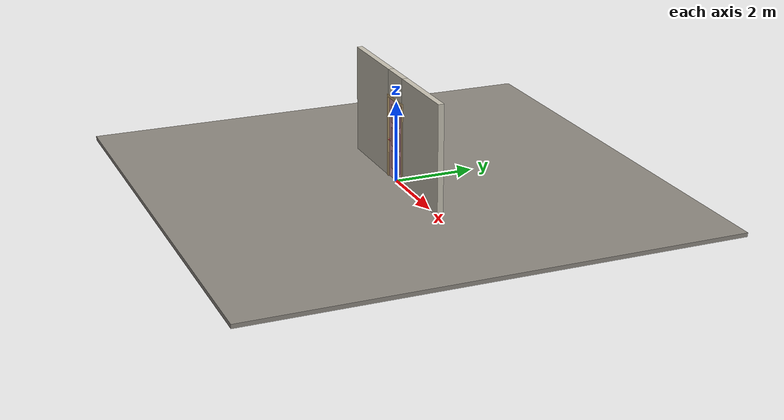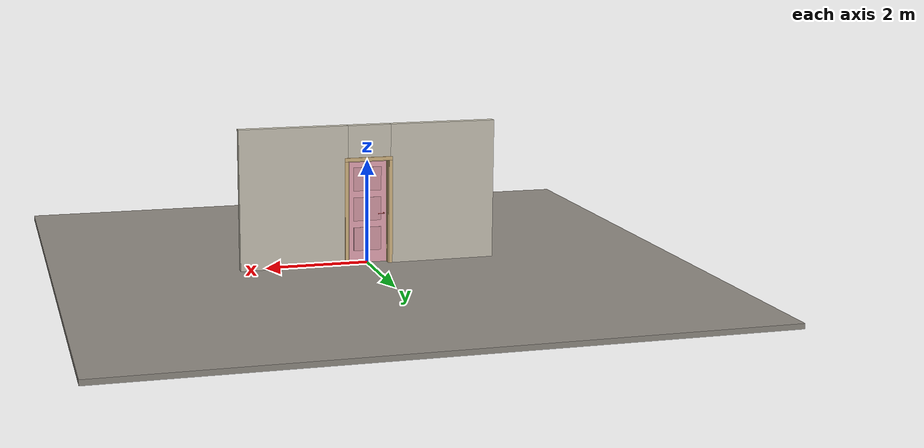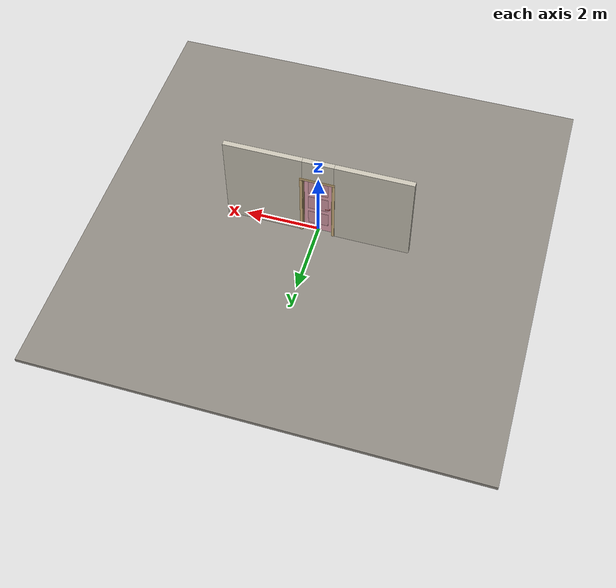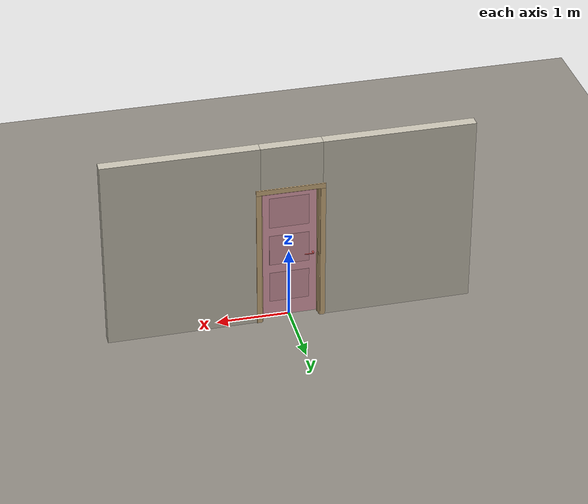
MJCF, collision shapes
<?xml version="1.0" ?>
<mujoco model="db0547_swing_single_full">
  <compiler angle="radian" meshdir="../../hardware" texturedir="../../textures" autolimits="true" inertiafromgeom="false"/>
  <option timestep="0.002" integrator="implicitfast" cone="elliptic" impratio="10" noslip_iterations="3">
    <flag multiccd="enable"/>
  </option>
  <size memory="16M"/>
  <default>
    <geom condim="4" solref="0.005 1" solimp="0.95 0.99 0.001"/>
    <joint solreflimit="0.005 1" solimplimit="0.95 0.99 0.001"/>
    <tendon solreflimit="0.005 1"/>
    <equality solref="0.002 1"/>
  </default>
  <visual>
    <headlight ambient="0.4 0.4 0.4" diffuse="0.7 0.7 0.7" specular="0.2 0.2 0.2"/>
    <quality shadowsize="4096"/>
    <map znear="0.01" zfar="60"/>
  </visual>
  <asset>
    <mesh name="coat_hook_d622d37ad0" file="coat_hook_d622d37ad0.obj"/>
    <mesh name="hinge_96510cf394" file="hinge_96510cf394.obj"/>
    <mesh name="hinge_jamb_7fd4ca52b2" file="hinge_jamb_7fd4ca52b2.obj"/>
    <mesh name="lever_57205841c3" file="lever_57205841c3.obj"/>
    <material name="mat_floor" rgba="0.55 0.53 0.5 1" specular="0.2" shininess="0.15" reflectance="0"/>
    <material name="mat_wall" rgba="0.78 0.76 0.7 1" specular="0.2" shininess="0.1" reflectance="0"/>
    <material name="mat_leaf" rgba="0.9 0.65 0.7 1" specular="0.2" shininess="0.62" reflectance="0"/>
    <material name="mat_leaf_panel" rgba="0.828 0.598 0.644 1" specular="0.2" shininess="0.62" reflectance="0"/>
    <material name="mat_hinge" rgba="0.65 0.66 0.68 1" specular="0.74" shininess="0.5" reflectance="0.36"/>
    <material name="mat_op_black_matte_metal" rgba="0.05 0.05 0.05 1" specular="0.38" shininess="0.3" reflectance="0.12"/>
    <material name="mat_trim" rgba="0.85 0.66 0.3 1" specular="0.8" shininess="0.75" reflectance="0.4"/>
    <material name="mat_bolt" rgba="0.85 0.66 0.3 1" specular="0.8" shininess="0.75" reflectance="0.4"/>
    <material name="mat_frame" rgba="0.82 0.7 0.5 1" specular="0.2" shininess="0.45" reflectance="0"/>
    <material name="mat_hook" rgba="0.9 0.9 0.92 1" specular="0.8" shininess="0.9" reflectance="0.4"/>
    <texture name="skybox" type="skybox" builtin="gradient" rgb1="0.6 0.7 0.85" rgb2="0.9 0.92 0.95" width="256" height="256"/>
  </asset>
  <worldbody>
    <light name="sun" pos="1.5 -2.5 4" dir="-0.3 0.5 -0.8" directional="true" diffuse="0.8 0.8 0.8" specular="0.3 0.3 0.3" castshadow="true"/>
    <light name="fill" pos="-1.5 2.5 3" dir="0.3 -0.5 -0.7" directional="true" diffuse="0.35 0.35 0.4" castshadow="false"/>
    <camera name="robot_view" pos="0 -2.450125 1.698475" xyaxes="1 0 0 0 0.26963 0.962964" fovy="52"/>
    <camera name="far_view" pos="0 2.546125 1.698475" xyaxes="-1 0 0 0 -0.26963 0.962964" fovy="52"/>
    <camera name="iso" pos="-1.898575 -2.050425 2.098175" xyaxes="0.741536 -0.670913 0 0.242917 0.268487 0.932151" fovy="46"/>
    <camera name="detail_handle" pos="-0.0445 -0.8725 1.245" xyaxes="0.97561 0.219512 0 -0.070934 0.315262 0.94635" fovy="38"/>
    <geom name="floor" type="box" size="6 6 0.05" pos="0 0 -0.05" material="mat_floor" group="0" contype="1" conaffinity="1" friction="0.8 0.005 0.0001" density="2400"/>
    <geom name="wall_left" type="box" size="1.03325 0.0725 1.35" pos="-1.46675 0.048 1.35" material="mat_wall" group="0" contype="1" conaffinity="1" friction="0.6 0.005 0.0001" density="800"/>
    <geom name="wall_right" type="box" size="1.04825 0.0725 1.35" pos="1.45175 0.048 1.35" material="mat_wall" group="0" contype="1" conaffinity="1" friction="0.6 0.005 0.0001" density="800"/>
    <geom name="wall_header" type="box" size="0.4185 0.0725 0.3265" pos="-0.015 0.048 2.3735" material="mat_wall" group="0" contype="1" conaffinity="1" friction="0.6 0.005 0.0001" density="800"/>
    <geom name="hinge_0_jamb" type="mesh" mesh="hinge_jamb_7fd4ca52b2" pos="0.3815 -0.0245 0.259" quat="0 0 1 0" material="mat_hinge" group="1" contype="0" conaffinity="0" density="7850"/>
    <geom name="hinge_1_jamb" type="mesh" mesh="hinge_jamb_7fd4ca52b2" pos="0.3815 -0.0245 1.814" quat="0 0 1 0" material="mat_hinge" group="1" contype="0" conaffinity="0" density="7850"/>
    <geom name="jamb_hinge" type="box" size="0.0095 0.0725 0.999" pos="0.394 0.048 0.999" material="mat_frame" group="0" contype="1" conaffinity="1" friction="0.6 0.005 0.0001" density="400"/>
    <geom name="strike_965_wall_n" type="box" size="0.0245 0.056325 0.0167" pos="-0.409 0.064175 0.965" material="mat_frame" group="0" contype="1" conaffinity="1" friction="0.6 0.005 0.0001" density="400"/>
    <geom name="strike_965_wall_p" type="box" size="0.0245 0.008 0.0167" pos="-0.409 -0.01585 0.965" material="mat_frame" group="0" contype="1" conaffinity="1" friction="0.6 0.005 0.0001" density="400"/>
    <geom name="strike_965_ramp" type="box" size="0.0245 0.01649 0.0167" pos="-0.413636 -0.028673 0.965" quat="0.977148 0 0 -0.212558" material="mat_frame" group="0" contype="1" conaffinity="1" friction="0.12 0.005 0.0001" density="400"/>
    <geom name="strike_965_back" type="box" size="0.01615 0.00785 0.0167" pos="-0.41735 0 0.965" material="mat_frame" group="0" contype="1" conaffinity="1" friction="0.6 0.005 0.0001" density="400"/>
    <geom name="jamb_strike_0" type="box" size="0.0245 0.0725 0.47415" pos="-0.409 0.048 0.47415" material="mat_frame" group="0" contype="1" conaffinity="1" friction="0.6 0.005 0.0001" density="400"/>
    <geom name="jamb_strike_1" type="box" size="0.0245 0.0725 0.50815" pos="-0.409 0.048 1.48985" material="mat_frame" group="0" contype="1" conaffinity="1" friction="0.6 0.005 0.0001" density="400"/>
    <geom name="jamb_head" type="box" size="0.4185 0.0725 0.0095" pos="-0.015 0.048 2.0075" material="mat_frame" group="0" contype="1" conaffinity="1" friction="0.6 0.005 0.0001" density="400"/>
    <geom name="head_stud" type="box" size="0.4185 0.0725 0.015" pos="-0.015 0.048 2.032" material="mat_wall" group="0" contype="1" conaffinity="1" friction="0.6 0.005 0.0001" density="500"/>
    <geom name="stop_hinge" type="box" size="0.0055 0.016 0.999" pos="0.379 0.034 0.999" material="mat_frame" group="0" contype="1" conaffinity="1" friction="0.6 0.005 0.0001" density="400"/>
    <geom name="stop_strike" type="box" size="0.0055 0.016 0.999" pos="-0.379 0.034 0.999" material="mat_frame" group="0" contype="1" conaffinity="1" friction="0.6 0.005 0.0001" density="400"/>
    <geom name="stop_head" type="box" size="0.3845 0.016 0.0055" pos="0 0.034 1.9925" material="mat_frame" group="0" contype="1" conaffinity="1" friction="0.6 0.005 0.0001" density="400"/>
    <geom name="casing_l_n" type="box" size="0.035 0.008 1.0085" pos="-0.4335 -0.0325 0.999" material="mat_frame" group="2" contype="0" conaffinity="0" density="400"/>
    <geom name="casing_r_n" type="box" size="0.035 0.008 1.0085" pos="0.4335 -0.0325 0.999" material="mat_frame" group="2" contype="0" conaffinity="0" density="400"/>
    <geom name="casing_h_n" type="box" size="0.4685 0.008 0.035" pos="0 -0.0325 2.047" material="mat_frame" group="2" contype="0" conaffinity="0" density="400"/>
    <geom name="casing_l_p" type="box" size="0.035 0.008 1.0085" pos="-0.4335 0.1285 0.999" material="mat_frame" group="2" contype="0" conaffinity="0" density="400"/>
    <geom name="casing_r_p" type="box" size="0.035 0.008 1.0085" pos="0.4335 0.1285 0.999" material="mat_frame" group="2" contype="0" conaffinity="0" density="400"/>
    <geom name="casing_h_p" type="box" size="0.4685 0.008 0.035" pos="0 0.1285 2.047" material="mat_frame" group="2" contype="0" conaffinity="0" density="400"/>
    <site name="approach_point" pos="0 -1.5 0" quat="1 0 0 0" size="0.05" rgba="0.2 0.9 0.2 0.5" group="4"/>
    <site name="goal_point" pos="0 1.5 0" quat="1 0 0 0" size="0.05" rgba="0.2 0.9 0.2 0.5" group="4"/>
    <site name="door_plane_center" pos="0 0 0.999" quat="1 0 0 0" size="0.02" rgba="0.2 0.9 0.2 0.5" group="4"/>
    <body name="leaf" pos="0.3845 0 0">
      <inertial pos="-0.37518 -0.000076 1.006247" mass="11.603505" quat="0.500281 -0.499192 0.501061 0.499463" diaginertia="0.587172859 3.890947636 4.475266028"/>
      <joint name="leaf_hinge" type="hinge" axis="0 0 1" pos="-0.003 -0.0245 0" limited="true" range="0 1.745329" damping="0.170864" frictionloss="1.159279" armature="0.02"/>
      <geom name="leaf_slab" type="box" size="0.381 0.0175 0.9925" pos="-0.384 0 1.0015" material="mat_leaf" group="0" contype="1" conaffinity="1" friction="0.35 0.005 0.0001" density="1"/>
      <geom name="leaf_panel_0_n" type="box" size="0.271 0.003 0.2279" pos="-0.384 -0.0205 0.47525" material="mat_leaf_panel" group="1" contype="0" conaffinity="0" density="1"/>
      <geom name="leaf_panel_0_p" type="box" size="0.271 0.003 0.2279" pos="-0.384 0.0205 0.47525" material="mat_leaf_panel" group="1" contype="0" conaffinity="0" density="1"/>
      <geom name="leaf_panel_1_n" type="box" size="0.271 0.003 0.2279" pos="-0.384 -0.0205 1.06105" material="mat_leaf_panel" group="1" contype="0" conaffinity="0" density="1"/>
      <geom name="leaf_panel_1_p" type="box" size="0.271 0.003 0.2279" pos="-0.384 0.0205 1.06105" material="mat_leaf_panel" group="1" contype="0" conaffinity="0" density="1"/>
      <geom name="leaf_panel_2_n" type="box" size="0.271 0.003 0.2279" pos="-0.384 -0.0205 1.64685" material="mat_leaf_panel" group="1" contype="0" conaffinity="0" density="1"/>
      <geom name="leaf_panel_2_p" type="box" size="0.271 0.003 0.2279" pos="-0.384 0.0205 1.64685" material="mat_leaf_panel" group="1" contype="0" conaffinity="0" density="1"/>
      <geom name="hinge_0" type="mesh" mesh="hinge_96510cf394" pos="-0.003 -0.0245 0.259" quat="0 0 1 0" material="mat_hinge" group="1" contype="0" conaffinity="0" density="7850"/>
      <geom name="hinge_1" type="mesh" mesh="hinge_96510cf394" pos="-0.003 -0.0245 1.814" quat="0 0 1 0" material="mat_hinge" group="1" contype="0" conaffinity="0" density="7850"/>
      <geom name="leaf_latch_bolt_faceplate" type="box" size="0.0006 0.01235 0.0267" pos="-0.7644 0 0.965" material="mat_bolt" group="1" contype="0" conaffinity="0" density="8500"/>
      <geom name="coat_hook" type="mesh" mesh="coat_hook_d622d37ad0" pos="-0.384 0.0175 1.644" quat="0 0 0.707107 0.707107" material="mat_hook" group="2" contype="0" conaffinity="0" density="7000"/>
      <site name="leaf_edge_mid" pos="-0.765 0 0.9925" quat="1 0 0 0" size="0.02" rgba="0.2 0.9 0.2 0.5" group="4"/>
      <body name="leaf_handle" pos="-0.705 0 0.965">
        <inertial pos="0.018609 0 0" mass="0.798454" quat="0.707107 0 0 -0.707107" diaginertia="0.001003601 0.002236545 0.003135681"/>
        <joint name="leaf_handle_hinge" type="hinge" axis="0 1 0" limited="true" range="0 0.87" damping="0.212416" frictionloss="0.042" stiffness="1" springref="-0.35" armature="0.01"/>
        <geom name="leaf_handle_spindle" type="cylinder" size="0.006 0.0255" pos="0 0 0" quat="0.707107 -0.707107 0 0" material="mat_op_black_matte_metal" group="1" contype="0" conaffinity="0" density="7850"/>
        <geom name="leaf_handle_lever_n" type="mesh" mesh="lever_57205841c3" pos="0 -0.0175 0" quat="0 0 -0.707107 0.707107" material="mat_op_black_matte_metal" group="1" contype="0" conaffinity="0" density="3000"/>
        <geom name="leaf_handle_lever_col_n" type="capsule" size="0.007 0.053" pos="0.06 -0.0725 0" quat="0.707107 0 0.707107 0" material="mat_op_black_matte_metal" group="3" contype="1" conaffinity="1" rgba="0.8 0.3 0.3 0.25" friction="0.7 0.01 0.0001" density="3000"/>
        <geom name="leaf_handle_hub_col_n" type="cylinder" size="0.012 0.022" pos="0 -0.0475 0" quat="0.707107 -0.707107 0 0" material="mat_op_black_matte_metal" group="3" contype="1" conaffinity="1" rgba="0.8 0.3 0.3 0.25" friction="0.6 0.005 0.0001" density="3000"/>
        <geom name="leaf_handle_lever_p" type="mesh" mesh="lever_57205841c3" pos="0 0.0175 0" quat="0 0 0.707107 0.707107" material="mat_op_black_matte_metal" group="1" contype="0" conaffinity="0" density="3000"/>
        <geom name="leaf_handle_lever_col_p" type="capsule" size="0.007 0.053" pos="0.06 0.0725 0" quat="0.707107 0 0.707107 0" material="mat_op_black_matte_metal" group="3" contype="1" conaffinity="1" rgba="0.8 0.3 0.3 0.25" friction="0.7 0.01 0.0001" density="3000"/>
        <geom name="leaf_handle_hub_col_p" type="cylinder" size="0.012 0.022" pos="0 0.0475 0" quat="0.707107 -0.707107 0 0" material="mat_op_black_matte_metal" group="3" contype="1" conaffinity="1" rgba="0.8 0.3 0.3 0.25" friction="0.6 0.005 0.0001" density="3000"/>
        <site name="leaf_handle_grip_n" pos="0.096 -0.0725 0" quat="1 0 0 0" size="0.012" rgba="0.2 0.9 0.2 0.5" group="4"/>
        <site name="leaf_handle_grip_p" pos="0.096 0.0725 0" quat="1 0 0 0" size="0.012" rgba="0.2 0.9 0.2 0.5" group="4"/>
      </body>
      <body name="leaf_latch_bolt" pos="-0.765 0 0.965">
        <inertial pos="0.00865 0 0" mass="0.041419" quat="0.92388 0.382683 0 0" diaginertia="0.000000798 0.000005598 0.000005598"/>
        <joint name="leaf_latch_bolt_slide" type="slide" axis="1 0 0" limited="true" range="0 0.0127" damping="2" frictionloss="0.3" stiffness="300" springref="-0.008333" armature="0.1"/>
        <geom name="leaf_latch_bolt_capsule" type="capsule" size="0.00635 0.015" pos="0.00865 0 0" quat="0.707107 0 -0.707107 0" material="mat_bolt" group="0" contype="1" conaffinity="1" friction="0.2 0.005 0.0001" density="8500"/>
      </body>
    </body>
  </worldbody>
  <tendon>
    <fixed name="leaf_latch_bolt_coupling" limited="true" range="0 10">
      <joint joint="leaf_latch_bolt_slide" coef="1"/>
      <joint joint="leaf_handle_hinge" coef="-0.015679"/>
    </fixed>
  </tendon>
  <sensor>
    <jointpos name="leaf_hinge_pos" joint="leaf_hinge"/>
    <jointvel name="leaf_hinge_vel" joint="leaf_hinge"/>
    <jointpos name="leaf_handle_hinge_pos" joint="leaf_handle_hinge"/>
    <jointvel name="leaf_handle_hinge_vel" joint="leaf_handle_hinge"/>
    <jointpos name="leaf_latch_bolt_slide_pos" joint="leaf_latch_bolt_slide"/>
    <jointvel name="leaf_latch_bolt_slide_vel" joint="leaf_latch_bolt_slide"/>
  </sensor>
</mujoco>
